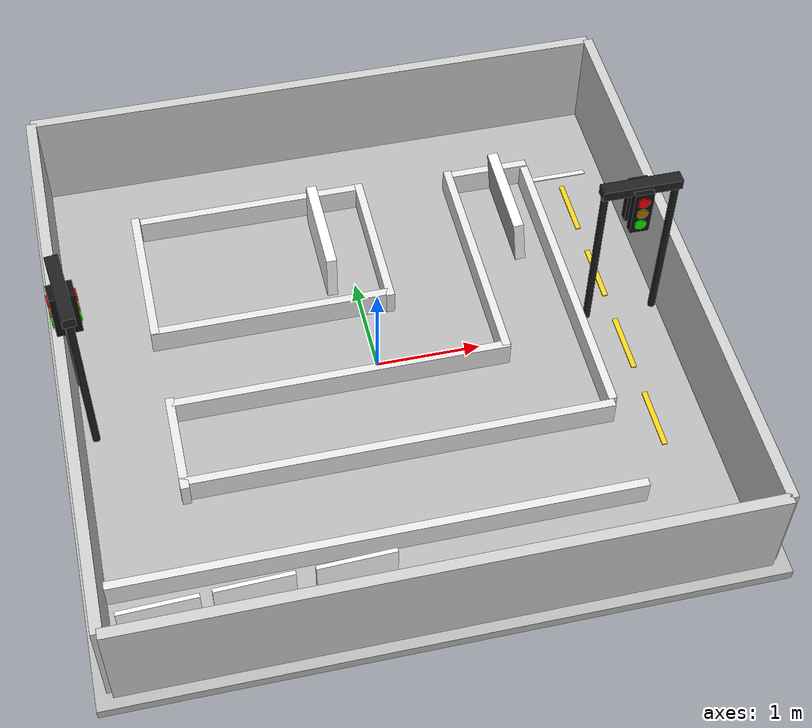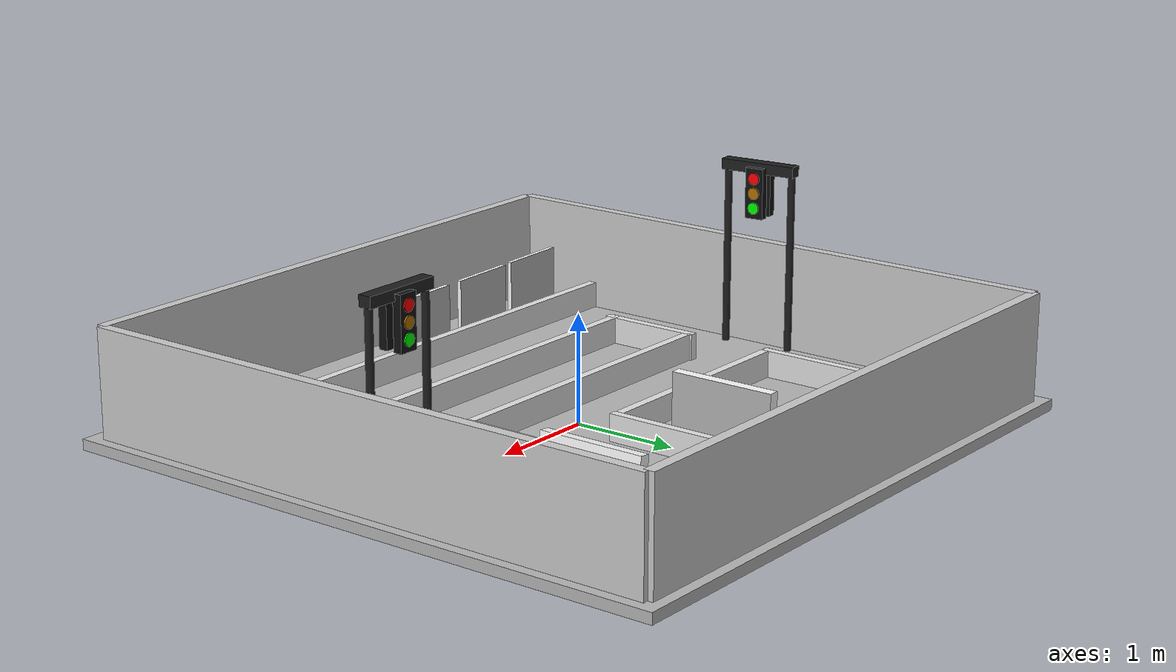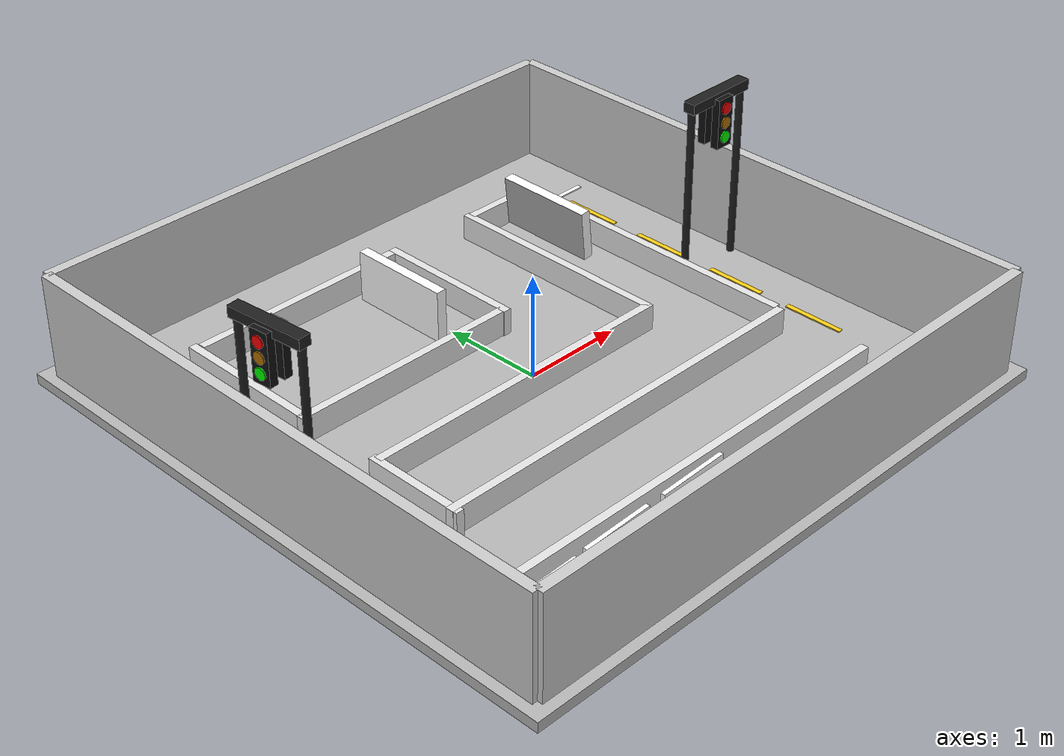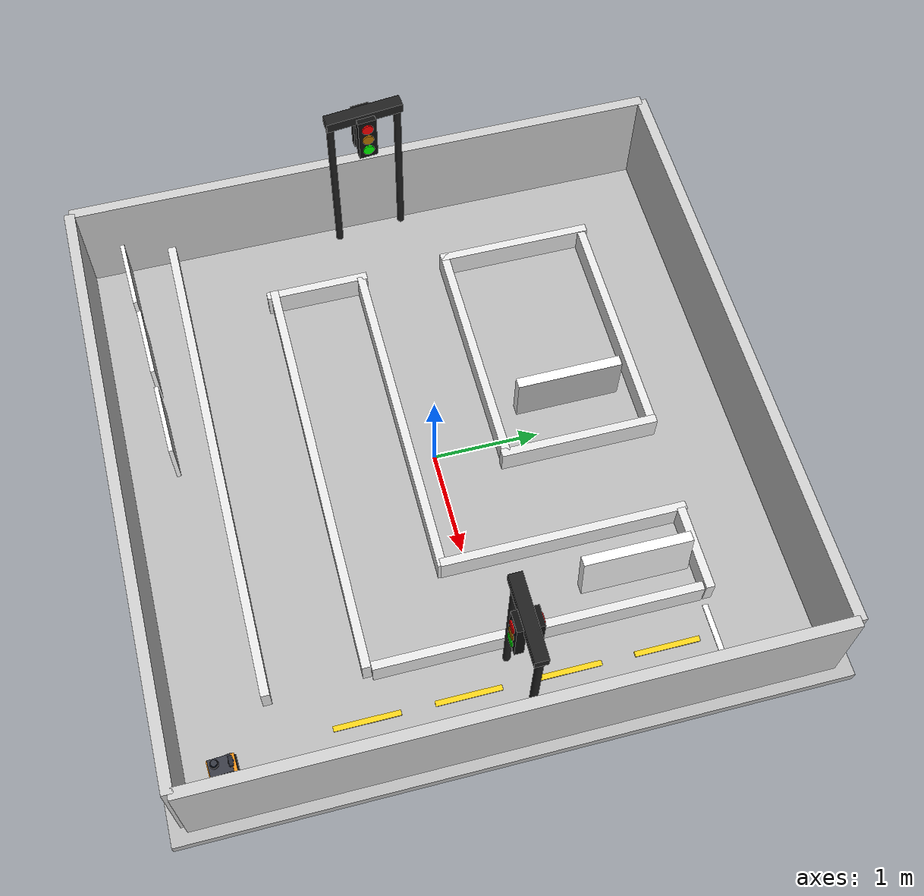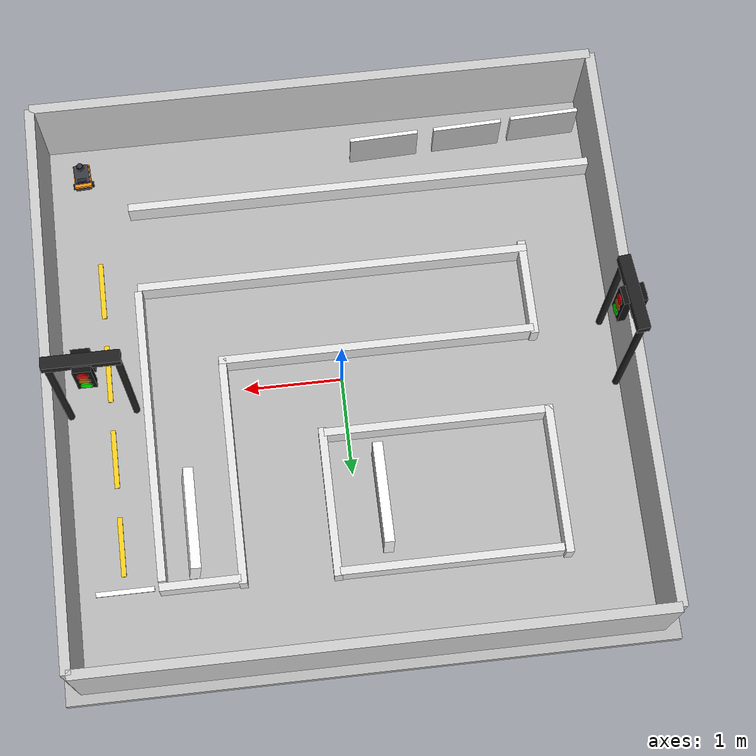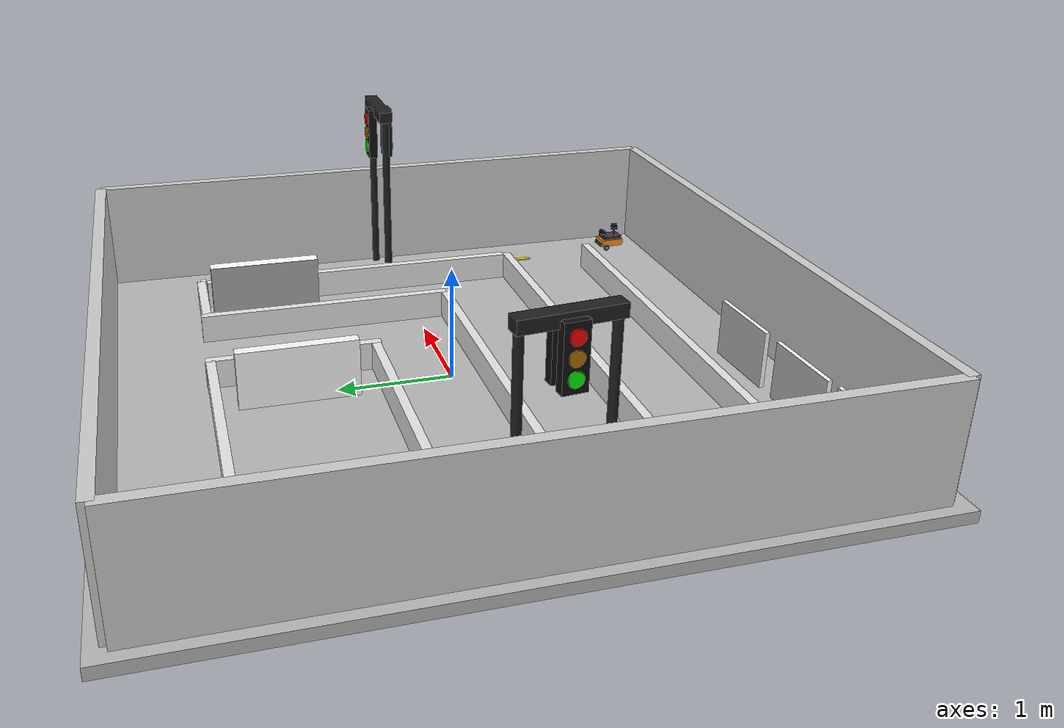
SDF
<sdf version='1.7'>
  <world name='competition_world'>
    <useSimTime>true</useSimTime>
    <physics type='ode'>
      <max_step_size>0.001</max_step_size>
      <real_time_factor>1</real_time_factor>
      <real_time_update_rate>1000</real_time_update_rate>
    </physics>
    <light name='sun' type='directional'>
      <cast_shadows>1</cast_shadows>
      <pose>0 0 10 0 -0 0</pose>
      <diffuse>0.8 0.8 0.8 1</diffuse>
      <specular>0.2 0.2 0.2 1</specular>
      <attenuation><range>1000</range><constant>0.9</constant><linear>0.01</linear><quadratic>0.001</quadratic></attenuation>
      <direction>-0.5 0.1 -0.9</direction>
      <spot><inner_angle>0</inner_angle><outer_angle>0</outer_angle><falloff>0</falloff></spot>
    </light>
    <model name='competition_ground'>
      <static>1</static>
      <link name='link'>
        <pose>0 0 0 0 -0 0</pose>
        <collision name='collision'>
          <geometry><box><size>6 6 0.1</size></box></geometry>
          <max_contacts>10</max_contacts>
          <surface><contact><ode/></contact><bounce/><friction><torsional><ode/></torsional><ode/></friction></surface>
        </collision>
        <visual name='visual'>
          <geometry><box><size>6 6 0.1</size></box></geometry>
          <material>
            <script>
              <uri>model://competition_ground/materials/scripts</uri>
              <uri>model://competition_ground/materials/textures</uri>
              <name>CompetitionGround/Ground</name>
            </script>
            <pbr><metal><albedo_map>model://competition_ground/materials/textures/map.png</albedo_map></metal></pbr>
          </material>
        </visual>
        <self_collide>0</self_collide><enable_wind>0</enable_wind><kinematic>0</kinematic>
      </link>
      <link name='north_wall'>
        <pose>0 2.85 0.55 0 -0 0</pose>
        <collision name='c'><geometry><box><size>5.7 0.1 1</size></box></geometry><max_contacts>10</max_contacts><surface><contact><ode/></contact><bounce/><friction><torsional><ode/></torsional><ode/></friction></surface></collision>
        <visual name='v'><geometry><box><size>5.7 0.1 1</size></box></geometry><material><ambient>0.7 0.7 0.7 1</ambient><diffuse>0.8 0.8 0.8 1</diffuse></material></visual>
        <self_collide>0</self_collide><enable_wind>0</enable_wind><kinematic>0</kinematic>
      </link>
      <link name='south_wall'>
        <pose>0 -2.85 0.55 0 -0 0</pose>
        <collision name='c'><geometry><box><size>5.7 0.1 1</size></box></geometry><max_contacts>10</max_contacts><surface><contact><ode/></contact><bounce/><friction><torsional><ode/></torsional><ode/></friction></surface></collision>
        <visual name='v'><geometry><box><size>5.7 0.1 1</size></box></geometry><material><ambient>0.7 0.7 0.7 1</ambient><diffuse>0.8 0.8 0.8 1</diffuse></material></visual>
        <self_collide>0</self_collide><enable_wind>0</enable_wind><kinematic>0</kinematic>
      </link>
      <link name='west_wall'>
        <pose>-2.85 0 0.55 0 -0 0</pose>
        <collision name='c'><geometry><box><size>0.1 5.7 1</size></box></geometry><max_contacts>10</max_contacts><surface><contact><ode/></contact><bounce/><friction><torsional><ode/></torsional><ode/></friction></surface></collision>
        <visual name='v'><geometry><box><size>0.1 5.7 1</size></box></geometry><material><ambient>0.7 0.7 0.7 1</ambient><diffuse>0.8 0.8 0.8 1</diffuse></material></visual>
        <self_collide>0</self_collide><enable_wind>0</enable_wind><kinematic>0</kinematic>
      </link>
      <link name='east_wall'>
        <pose>2.85 0 0.55 0 -0 0</pose>
        <collision name='c'><geometry><box><size>0.1 5.7 1</size></box></geometry><max_contacts>10</max_contacts><surface><contact><ode/></contact><bounce/><friction><torsional><ode/></torsional><ode/></friction></surface></collision>
        <visual name='v'><geometry><box><size>0.1 5.7 1</size></box></geometry><material><ambient>0.7 0.7 0.7 1</ambient><diffuse>0.8 0.8 0.8 1</diffuse></material></visual>
        <self_collide>0</self_collide><enable_wind>0</enable_wind><kinematic>0</kinematic>
      </link>
    </model>
    <model name='person_area_1'>
      <static>1</static>
      <pose>-0.256507 1.35185 0.1 0 -0 1.57483</pose>
      <link name='link'>
        <visual name='visual'><geometry><mesh><uri>model://ro1/meshes/ro1.dae</uri></mesh></geometry></visual>
        <collision name='collision'><geometry><box><size>0.6 0.3 1.7</size></box></geometry><max_contacts>10</max_contacts><surface><contact><ode/></contact><bounce/><friction><torsional><ode/></torsional><ode/></friction></surface></collision>
        <self_collide>0</self_collide><enable_wind>0</enable_wind><kinematic>0</kinematic>
      </link>
    </model>
    <model name='person_area_2'>
      <static>1</static>
      <pose>1.65659 1.40352 0.1 0.101628 0.000426 -1.57498</pose>
      <link name='link'>
        <visual name='visual'><geometry><mesh><uri>model://ro2/meshes/ro2.dae</uri></mesh></geometry></visual>
        <collision name='collision'><geometry><box><size>0.6 0.3 1.7</size></box></geometry><max_contacts>10</max_contacts><surface><contact><ode/></contact><bounce/><friction><torsional><ode/></torsional><ode/></friction></surface></collision>
        <self_collide>0</self_collide><enable_wind>0</enable_wind><kinematic>0</kinematic>
      </link>
    </model>
    <model name='car_plate_area'>
      <static>1</static>
      <pose>-1.56751 -2.40057 0.1 0 0 -3.10959</pose>
      <link name='link'>
        <visual name='visual'><geometry><mesh><uri>model://cp/meshes/cp.dae</uri></mesh></geometry></visual>
        <collision name='collision'><geometry><box><size>0.4 0.3 0.3</size></box></geometry><max_contacts>10</max_contacts><surface><contact><ode/></contact><bounce/><friction><torsional><ode/></torsional><ode/></friction></surface></collision>
        <self_collide>0</self_collide><enable_wind>0</enable_wind><kinematic>0</kinematic>
      </link>
    </model>
    <model name='car_plate_area_clone'>
      <static>1</static>
      <pose>-0.698781 -2.37381 0.1 0 0 -3.10959</pose>
      <link name='link'><visual name='visual'><geometry><mesh><uri>model://cp/meshes/cp.dae</uri></mesh></geometry></visual><collision name='collision'><geometry><box><size>0.4 0.3 0.3</size></box></geometry></collision></link>
    </model>
    <model name='car_plate_area_clone_0'>
      <static>1</static>
      <pose>-2.37061 -2.43837 0.1 0 0 -3.10959</pose>
      <link name='link'><visual name='visual'><geometry><mesh><uri>model://cp/meshes/cp.dae</uri></mesh></geometry></visual><collision name='collision'><geometry><box><size>0.4 0.3 0.3</size></box></geometry></collision></link>
    </model>
    <model name='my_car'>
      <pose>2.4618 -2.4682 0.05 0 -0 1.621</pose>
      <link name='chassis'>
        <pose>0 0 0 0 -0 0</pose>
        <inertial><mass>1.2</mass><inertia><ixx>0.0034</ixx><ixy>0</ixy><ixz>0</ixz><iyy>0.0063</iyy><iyz>0</iyz><izz>0.0087</izz></inertia><pose>0 0 0 0 -0 0</pose></inertial>
        <collision name='body_collision'><pose>0 0 0.075 0 -0 0</pose><geometry><box><size>0.24 0.17 0.07</size></box></geometry><max_contacts>10</max_contacts><surface><contact><ode/></contact><bounce/><friction><torsional><ode/></torsional><ode/></friction></surface></collision>
        <collision name='caster_front'><pose>0.09 0 0.015 0 -0 0</pose><geometry><sphere><radius>0.015</radius></sphere></geometry><surface><friction><ode><mu>0.01</mu><mu2>0.01</mu2></ode><torsional><ode/></torsional></friction><contact><ode/></contact><bounce/></surface><max_contacts>10</max_contacts></collision>
        <collision name='caster_back'><pose>-0.09 0 0.015 0 -0 0</pose><geometry><sphere><radius>0.015</radius></sphere></geometry><surface><friction><ode><mu>0.01</mu><mu2>0.01</mu2></ode><torsional><ode/></torsional></friction><contact><ode/></contact><bounce/></surface><max_contacts>10</max_contacts></collision>
        <visual name='body_lower'><pose>0 0 0.075 0 -0 0</pose><geometry><box><size>0.24 0.17 0.07</size></box></geometry><material><ambient>0.85 0.45 0.05 1</ambient><diffuse>1 0.58 0.1 1</diffuse><specular>0.5 0.5 0.5 1</specular></material></visual>
        <visual name='body_upper'><pose>-0.01 0 0.125 0 -0 0</pose><geometry><box><size>0.2 0.15 0.035</size></box></geometry><material><ambient>0.12 0.12 0.14 1</ambient><diffuse>0.22 0.23 0.27 1</diffuse><specular>0.6 0.6 0.65 1</specular></material></visual>
        <visual name='bumper'><pose>0.125 0 0.055 0 -0 0</pose><geometry><box><size>0.015 0.16 0.03</size></box></geometry><material><ambient>0.05 0.05 0.05 1</ambient><diffuse>0.1 0.1 0.1 1</diffuse></material></visual>
        <visual name='camera_mount'><pose>0.075 0 0.155 0 -0 0</pose><geometry><box><size>0.03 0.04 0.025</size></box></geometry><material><ambient>0.05 0.05 0.05 1</ambient><diffuse>0.1 0.1 0.1 1</diffuse></material></visual>
        <visual name='camera_body'><pose>0.085 0 0.185 0 -0 0</pose><geometry><box><size>0.035 0.09 0.03</size></box></geometry><material><ambient>0.08 0.08 0.1 1</ambient><diffuse>0.15 0.16 0.2 1</diffuse><specular>0.7 0.7 0.75 1</specular></material></visual>
        <visual name='camera_lens'><pose>0.105 0 0.185 3.14159 1.57079 3.14159</pose><geometry><cylinder><radius>0.011</radius><length>0.008</length></cylinder></geometry><material><ambient>0.02 0.05 0.15 1</ambient><diffuse>0.05 0.15 0.45 1</diffuse><specular>1 1 1 1</specular><emissive>0.02 0.05 0.15 1</emissive></material></visual>
        <visual name='lidar_mast'><pose>-0.05 0 0.175 0 -0 0</pose><geometry><cylinder><radius>0.008</radius><length>0.07</length></cylinder></geometry><material><ambient>0.5 0.08 0.05 1</ambient><diffuse>0.8 0.15 0.1 1</diffuse></material></visual>
        <visual name='lidar_base'><pose>-0.05 0 0.2225 0 -0 0</pose><geometry><cylinder><radius>0.038</radius><length>0.025</length></cylinder></geometry><material><ambient>0.03 0.03 0.035 1</ambient><diffuse>0.08 0.08 0.1 1</diffuse></material></visual>
        <visual name='lidar_head'><pose>-0.05 0 0.2475 0 -0 0</pose><geometry><cylinder><radius>0.028</radius><length>0.028</length></cylinder></geometry><material><ambient>0.1 0.1 0.12 1</ambient><diffuse>0.2 0.21 0.25 1</diffuse></material></visual>
        <visual name='lidar_window'><pose>-0.05 0 0.243 0 -0 0</pose><geometry><cylinder><radius>0.0285</radius><length>0.01</length></cylinder></geometry><material><ambient>0.05 0.08 0.12 1</ambient><diffuse>0.1 0.2 0.35 1</diffuse><specular>1 1 1 1</specular></material></visual>
        <self_collide>0</self_collide><enable_wind>0</enable_wind><kinematic>0</kinematic>
      </link>
      <link name='left_wheel'>
        <pose>0.075 0.095 0.033 0 -0 0</pose>
        <inertial><mass>0.15</mass><inertia><ixx>0.0001</ixx><ixy>0</ixy><ixz>0</ixz><iyy>0.0001</iyy><iyz>0</iyz><izz>0.0001</izz></inertia><pose>0 0 0 0 -0 0</pose></inertial>
        <collision name='collision'><pose>0 0 0 1.5708 -0 0</pose><geometry><cylinder><radius>0.033</radius><length>0.022</length></cylinder></geometry><surface><friction><ode><mu>1.5</mu><mu2>1.5</mu2></ode><torsional><ode/></torsional></friction><contact><ode/></contact><bounce/></surface><max_contacts>10</max_contacts></collision>
        <visual name='visual'><pose>0 0 0 1.5708 -0 0</pose><geometry><cylinder><radius>0.033</radius><length>0.022</length></cylinder></geometry><material><ambient>0.02 0.02 0.02 1</ambient><diffuse>0.05 0.05 0.05 1</diffuse></material></visual>
        <visual name='hub'><pose>0 0.012 0 1.5708 -0 0</pose><geometry><cylinder><radius>0.014</radius><length>0.002</length></cylinder></geometry><material><ambient>0.5 0.5 0.52 1</ambient><diffuse>0.75 0.75 0.78 1</diffuse></material></visual>
        <self_collide>0</self_collide><enable_wind>0</enable_wind><kinematic>0</kinematic>
      </link>
      <joint name='left_wheel_joint' type='revolute'>
        <parent>chassis</parent><child>left_wheel</child><pose>0 0 0 0 -0 0</pose>
        <axis><xyz>0 1 0</xyz><limit><lower>-1e+16</lower><upper>1e+16</upper></limit><dynamics><spring_reference>0</spring_reference><spring_stiffness>0</spring_stiffness></dynamics></axis>
      </joint>
      <link name='right_wheel'>
        <pose>0.075 -0.095 0.033 0 -0 0</pose>
        <inertial><mass>0.15</mass><inertia><ixx>0.0001</ixx><ixy>0</ixy><ixz>0</ixz><iyy>0.0001</iyy><iyz>0</iyz><izz>0.0001</izz></inertia><pose>0 0 0 0 -0 0</pose></inertial>
        <collision name='collision'><pose>0 0 0 1.5708 -0 0</pose><geometry><cylinder><radius>0.033</radius><length>0.022</length></cylinder></geometry><surface><friction><ode><mu>1.5</mu><mu2>1.5</mu2></ode><torsional><ode/></torsional></friction><contact><ode/></contact><bounce/></surface><max_contacts>10</max_contacts></collision>
        <visual name='visual'><pose>0 0 0 1.5708 -0 0</pose><geometry><cylinder><radius>0.033</radius><length>0.022</length></cylinder></geometry><material><ambient>0.02 0.02 0.02 1</ambient><diffuse>0.05 0.05 0.05 1</diffuse></material></visual>
        <visual name='hub'><pose>0 -0.012 0 1.5708 -0 0</pose><geometry><cylinder><radius>0.014</radius><length>0.002</length></cylinder></geometry><material><ambient>0.5 0.5 0.52 1</ambient><diffuse>0.75 0.75 0.78 1</diffuse></material></visual>
        <self_collide>0</self_collide><enable_wind>0</enable_wind><kinematic>0</kinematic>
      </link>
      <joint name='right_wheel_joint' type='revolute'>
        <parent>chassis</parent><child>right_wheel</child><pose>0 0 0 0 -0 0</pose>
        <axis><xyz>0 1 0</xyz><limit><lower>-1e+16</lower><upper>1e+16</upper></limit><dynamics><spring_reference>0</spring_reference><spring_stiffness>0</spring_stiffness></dynamics></axis>
      </joint>
      <plugin name='diff_drive' filename='libgazebo_ros_diff_drive.so'>
        <alwaysOn>1</alwaysOn><updateRate>50</updateRate><legacyMode>0</legacyMode>
        <leftJoint>left_wheel_joint</leftJoint><rightJoint>right_wheel_joint</rightJoint>
        <wheelSeparation>0.19</wheelSeparation><wheelDiameter>0.066</wheelDiameter><torque>10</torque>
        <commandTopic>cmd_vel</commandTopic><odometryTopic>odom</odometryTopic>
        <odometryFrame>odom</odometryFrame><robotBaseFrame>chassis</robotBaseFrame>
        <publishOdometry>1</publishOdometry><publishTf>0</publishTf>
        <publishWheelTF>0</publishWheelTF><publishWheelJointState>1</publishWheelJointState>
      </plugin>
      <link name='camera_link'>
        <pose>0.105 0 0.185 0 -0 0</pose>
        <inertial><mass>0.01</mass><inertia><ixx>1e-06</ixx><ixy>0</ixy><ixz>0</ixz><iyy>1e-06</iyy><iyz>0</iyz><izz>1e-06</izz></inertia><pose>0 0 0 0 -0 0</pose></inertial>
        <sensor name='camera' type='camera'>
          <always_on>1</always_on><update_rate>20</update_rate><visualize>1</visualize>
          <camera><horizontal_fov>1.047</horizontal_fov><image><width>640</width><height>480</height><format>R8G8B8</format></image><clip><near>0.05</near><far>10</far></clip></camera>
          <plugin name='camera_plugin' filename='libgazebo_ros_camera.so'>
            <alwaysOn>1</alwaysOn><cameraName>camera</cameraName><imageTopicName>image_raw</imageTopicName><cameraInfoTopicName>camera_info</cameraInfoTopicName><frameName>camera_link</frameName><hackBaseline>0</hackBaseline>
          </plugin>
        </sensor>
        <self_collide>0</self_collide><enable_wind>0</enable_wind><kinematic>0</kinematic>
      </link>
      <joint name='camera_joint' type='fixed'><parent>chassis</parent><child>camera_link</child></joint>
      <link name='lidar_link'>
        <pose>-0.05 0 0.25 0 -0 0</pose>
        <inertial><mass>0.01</mass><inertia><ixx>1e-06</ixx><ixy>0</ixy><ixz>0</ixz><iyy>1e-06</iyy><iyz>0</iyz><izz>1e-06</izz></inertia><pose>0 0 0 0 -0 0</pose></inertial>
        <sensor name='lidar' type='ray'>
          <always_on>1</always_on><update_rate>10</update_rate><visualize>0</visualize>
          <ray><scan><horizontal><samples>360</samples><resolution>1</resolution><min_angle>-3.14159</min_angle><max_angle>3.14159</max_angle></horizontal><vertical><samples>1</samples><min_angle>0</min_angle><max_angle>0</max_angle></vertical></scan><range><min>0.06</min><max>8</max><resolution>0.01</resolution></range></ray>
          <plugin name='lidar_plugin' filename='libgazebo_ros_laser.so'><topicName>scan</topicName><frameName>lidar_link</frameName></plugin>
        </sensor>
        <self_collide>0</self_collide><enable_wind>0</enable_wind><kinematic>0</kinematic>
      </link>
      <joint name='lidar_joint' type='fixed'><parent>chassis</parent><child>lidar_link</child></joint>
    </model>
    <model name='wall_H580'>
      <static>1</static>
      <pose>-0.4000 -1.9970 0.1500 0 0 0.0000</pose>
      <link name='link'>
        <visual name='v'><geometry><box><size>4.8 0.080 0.300</size></box></geometry>
          <material><ambient>0.85 0.85 0.85 1</ambient><diffuse>0.9 0.9 0.9 1</diffuse></material></visual>
        <collision name='c'><geometry><box><size>4.8 0.080 0.300</size></box></geometry>
          <max_contacts>10</max_contacts>
          <surface><contact><ode/></contact><bounce/><friction><torsional><ode/></torsional><ode/></friction></surface></collision>
        <self_collide>0</self_collide><enable_wind>0</enable_wind><kinematic>0</kinematic>
      </link>
    </model>

    <model name='low_wall_4.0m'>
      <static>1</static>
      <pose>-0.0303 -1.1100 0.1500 0 0 0.0000</pose>
      <link name='link'>
        <visual name='v'><geometry><box><size>4.0 0.080 0.300</size></box></geometry>
          <material><ambient>0.85 0.85 0.85 1</ambient><diffuse>0.9 0.9 0.9 1</diffuse></material></visual>
        <collision name='c'><geometry><box><size>4.0 0.080 0.300</size></box></geometry>
          <max_contacts>10</max_contacts>
          <surface><contact><ode/></contact><bounce/><friction><torsional><ode/></torsional><ode/></friction></surface></collision>
        <self_collide>0</self_collide><enable_wind>0</enable_wind><kinematic>0</kinematic>
      </link>
    </model>

    <model name='low_wall_3.2m'>
      <static>1</static>
      <pose>-0.3813 -0.2445 0.1500 0 0 0.0000</pose>
      <link name='link'>
        <visual name='v'><geometry><box><size>3.2 0.080 0.300</size></box></geometry>
          <material><ambient>0.85 0.85 0.85 1</ambient><diffuse>0.9 0.9 0.9 1</diffuse></material></visual>
        <collision name='c'><geometry><box><size>3.2 0.080 0.300</size></box></geometry>
          <max_contacts>10</max_contacts>
          <surface><contact><ode/></contact><bounce/><friction><torsional><ode/></torsional><ode/></friction></surface></collision>
        <self_collide>0</self_collide><enable_wind>0</enable_wind><kinematic>0</kinematic>
      </link>
    </model>

    <model name='low_wall_2.2m'>
      <static>1</static>
      <pose>-0.8631 2.0229 0.1500 0 0 0.0000</pose>
      <link name='link'>
        <visual name='v'><geometry><box><size>2.2 0.080 0.300</size></box></geometry>
          <material><ambient>0.85 0.85 0.85 1</ambient><diffuse>0.9 0.9 0.9 1</diffuse></material></visual>
        <collision name='c'><geometry><box><size>2.2 0.080 0.300</size></box></geometry>
          <max_contacts>10</max_contacts>
          <surface><contact><ode/></contact><bounce/><friction><torsional><ode/></torsional><ode/></friction></surface></collision>
        <self_collide>0</self_collide><enable_wind>0</enable_wind><kinematic>0</kinematic>
      </link>
    </model>

    <model name='low_wall_1.0m'>
      <static>1</static>
      <pose>-1.9864 -0.6855 0.1500 0 0 1.5708</pose>
      <link name='link'>
        <visual name='v'><geometry><box><size>1.0 0.080 0.300</size></box></geometry>
          <material><ambient>0.85 0.85 0.85 1</ambient><diffuse>0.9 0.9 0.9 1</diffuse></material></visual>
        <collision name='c'><geometry><box><size>1.0 0.080 0.300</size></box></geometry>
          <max_contacts>10</max_contacts>
          <surface><contact><ode/></contact><bounce/><friction><torsional><ode/></torsional><ode/></friction></surface></collision>
        <self_collide>0</self_collide><enable_wind>0</enable_wind><kinematic>0</kinematic>
      </link>
    </model>

    <model name='low_wall_1.5m'>
      <static>1</static>
      <pose>-2.0107 1.3350 0.1500 0 0 1.5708</pose>
      <link name='link'>
        <visual name='v'><geometry><box><size>1.5 0.080 0.300</size></box></geometry>
          <material><ambient>0.85 0.85 0.85 1</ambient><diffuse>0.9 0.9 0.9 1</diffuse></material></visual>
        <collision name='c'><geometry><box><size>1.5 0.080 0.300</size></box></geometry>
          <max_contacts>10</max_contacts>
          <surface><contact><ode/></contact><bounce/><friction><torsional><ode/></torsional><ode/></friction></surface></collision>
        <self_collide>0</self_collide><enable_wind>0</enable_wind><kinematic>0</kinematic>
      </link>
    </model>

    <model name='low_wall_3.0m'>
      <static>1</static>
      <pose>1.9660 0.4324 0.1500 0 0 1.5708</pose>
      <link name='link'>
        <visual name='v'><geometry><box><size>3.0 0.080 0.300</size></box></geometry>
          <material><ambient>0.85 0.85 0.85 1</ambient><diffuse>0.9 0.9 0.9 1</diffuse></material></visual>
        <collision name='c'><geometry><box><size>3.0 0.080 0.300</size></box></geometry>
          <max_contacts>10</max_contacts>
          <surface><contact><ode/></contact><bounce/><friction><torsional><ode/></torsional><ode/></friction></surface></collision>
        <self_collide>0</self_collide><enable_wind>0</enable_wind><kinematic>0</kinematic>
      </link>
    </model>

    <model name='low_wall_1.5m_clone'>
      <static>1</static>
      <pose>0.2598 1.3171 0.1500 0 0 1.5708</pose>
      <link name='link'>
        <visual name='v'><geometry><box><size>1.5 0.080 0.300</size></box></geometry>
          <material><ambient>0.85 0.85 0.85 1</ambient><diffuse>0.9 0.9 0.9 1</diffuse></material></visual>
        <collision name='c'><geometry><box><size>1.5 0.080 0.300</size></box></geometry>
          <max_contacts>10</max_contacts>
          <surface><contact><ode/></contact><bounce/><friction><torsional><ode/></torsional><ode/></friction></surface></collision>
        <self_collide>0</self_collide><enable_wind>0</enable_wind><kinematic>0</kinematic>
      </link>
    </model>

    <model name='low_wall_2.3m'>
      <static>1</static>
      <pose>-0.9031 0.6171 0.1500 0 0 0.0000</pose>
      <link name='link'>
        <visual name='v'><geometry><box><size>2.3 0.080 0.300</size></box></geometry>
          <material><ambient>0.85 0.85 0.85 1</ambient><diffuse>0.9 0.9 0.9 1</diffuse></material></visual>
        <collision name='c'><geometry><box><size>2.3 0.080 0.300</size></box></geometry>
          <max_contacts>10</max_contacts>
          <surface><contact><ode/></contact><bounce/><friction><torsional><ode/></torsional><ode/></friction></surface></collision>
        <self_collide>0</self_collide><enable_wind>0</enable_wind><kinematic>0</kinematic>
      </link>
    </model>

    <model name='low_wall_0.8m'>
      <static>1</static>
      <pose>1.6010 1.9874 0.1500 0 0 0.0000</pose>
      <link name='link'>
        <visual name='v'><geometry><box><size>0.8 0.080 0.300</size></box></geometry>
          <material><ambient>0.85 0.85 0.85 1</ambient><diffuse>0.9 0.9 0.9 1</diffuse></material></visual>
        <collision name='c'><geometry><box><size>0.8 0.080 0.300</size></box></geometry>
          <max_contacts>10</max_contacts>
          <surface><contact><ode/></contact><bounce/><friction><torsional><ode/></torsional><ode/></friction></surface></collision>
        <self_collide>0</self_collide><enable_wind>0</enable_wind><kinematic>0</kinematic>
      </link>
    </model>

    <model name='vertical_wall_2.3m'>
      <static>1</static>
      <pose>1.1837 0.8911 0.1500 0 0 1.5708</pose>
      <link name='link'>
        <visual name='v'><geometry><box><size>2.3 0.080 0.300</size></box></geometry>
          <material><ambient>0.85 0.85 0.85 1</ambient><diffuse>0.9 0.9 0.9 1</diffuse></material></visual>
        <collision name='c'><geometry><box><size>2.3 0.080 0.300</size></box></geometry>
          <max_contacts>10</max_contacts>
          <surface><contact><ode/></contact><bounce/><friction><torsional><ode/></torsional><ode/></friction></surface></collision>
        <self_collide>0</self_collide><enable_wind>0</enable_wind><kinematic>0</kinematic>
      </link>
    </model>

    <!-- Competition visual elements. They are visual-only road furniture, so the
         established wall collision topology used by mapping/navigation is unchanged. -->
    <model name='lane_markings'>
      <static>1</static>
      <link name='link'>
        <visual name='center_line_1'><pose>2.35 1.50 0.056 0 0 1.5708</pose><geometry><box><size>0.60 0.05 0.012</size></box></geometry><material><ambient>0.95 0.78 0.08 1</ambient><diffuse>1 0.82 0.10 1</diffuse></material></visual>
        <visual name='center_line_2'><pose>2.35 0.60 0.056 0 0 1.5708</pose><geometry><box><size>0.60 0.05 0.012</size></box></geometry><material><ambient>0.95 0.78 0.08 1</ambient><diffuse>1 0.82 0.10 1</diffuse></material></visual>
        <visual name='center_line_3'><pose>2.35 -0.30 0.056 0 0 1.5708</pose><geometry><box><size>0.60 0.05 0.012</size></box></geometry><material><ambient>0.95 0.78 0.08 1</ambient><diffuse>1 0.82 0.10 1</diffuse></material></visual>
        <visual name='center_line_4'><pose>2.35 -1.20 0.056 0 0 1.5708</pose><geometry><box><size>0.60 0.05 0.012</size></box></geometry><material><ambient>0.95 0.78 0.08 1</ambient><diffuse>1 0.82 0.10 1</diffuse></material></visual>
        <visual name='stop_line'><pose>2.35 1.95 0.056 0 0 0</pose><geometry><box><size>0.58 0.05 0.012</size></box></geometry><material><ambient>0.95 0.95 0.95 1</ambient><diffuse>1 1 1 1</diffuse></material></visual>
      </link>
    </model>

    <model name='traffic_light_A'>
      <static>1</static>
      <!-- Overhead gantry across the vertical lane. The signal faces both
           travel directions and has no collision geometry. -->
      <pose>0.075584 0.106639 0 0 -0 0</pose>
      <link name='link'>
        <visual name='left_pole'><pose>2.02 0 0.90 0 0 0</pose><geometry><cylinder><radius>0.035</radius><length>1.80</length></cylinder></geometry><material><ambient>0.08 0.08 0.08 1</ambient><diffuse>0.12 0.12 0.12 1</diffuse></material></visual>
        <visual name='right_pole'><pose>2.68 0 0.90 0 0 0</pose><geometry><cylinder><radius>0.035</radius><length>1.80</length></cylinder></geometry><material><ambient>0.08 0.08 0.08 1</ambient><diffuse>0.12 0.12 0.12 1</diffuse></material></visual>
        <visual name='overhead_beam'><pose>2.35 0 1.78 0 0 0</pose><geometry><box><size>0.74 0.12 0.10</size></box></geometry><material><ambient>0.08 0.08 0.08 1</ambient><diffuse>0.12 0.12 0.12 1</diffuse></material></visual>
        <visual name='housing_front'><pose>2.35 -0.075 1.55 0 0 0</pose><geometry><box><size>0.18 0.08 0.48</size></box></geometry><material><ambient>0.03 0.03 0.03 1</ambient><diffuse>0.06 0.06 0.06 1</diffuse></material></visual>
        <visual name='red_light_front'><pose>2.35 -0.123 1.69 1.5708 0 0</pose><geometry><cylinder><radius>0.055</radius><length>0.012</length></cylinder></geometry><material><ambient>0.8 0 0 1</ambient><diffuse>1 0 0 1</diffuse><emissive>0.7 0 0 1</emissive></material></visual>
        <visual name='yellow_light_front'><pose>2.35 -0.123 1.55 1.5708 0 0</pose><geometry><cylinder><radius>0.055</radius><length>0.012</length></cylinder></geometry><material><ambient>0.5 0.3 0 1</ambient><diffuse>0.7 0.45 0 1</diffuse></material></visual>
        <visual name='green_light_front'><pose>2.35 -0.123 1.41 1.5708 0 0</pose><geometry><cylinder><radius>0.055</radius><length>0.012</length></cylinder></geometry><material><ambient>0 0.7 0 1</ambient><diffuse>0 1 0 1</diffuse><emissive>0 0.55 0 1</emissive></material></visual>
        <visual name='housing_back'><pose>2.35 0.075 1.55 0 0 0</pose><geometry><box><size>0.18 0.08 0.48</size></box></geometry><material><ambient>0.03 0.03 0.03 1</ambient><diffuse>0.06 0.06 0.06 1</diffuse></material></visual>
        <visual name='red_light_back'><pose>2.35 0.123 1.69 1.5708 0 0</pose><geometry><cylinder><radius>0.055</radius><length>0.012</length></cylinder></geometry><material><ambient>0.8 0 0 1</ambient><diffuse>1 0 0 1</diffuse><emissive>0.7 0 0 1</emissive></material></visual>
        <visual name='yellow_light_back'><pose>2.35 0.123 1.55 1.5708 0 0</pose><geometry><cylinder><radius>0.055</radius><length>0.012</length></cylinder></geometry><material><ambient>0.5 0.3 0 1</ambient><diffuse>0.7 0.45 0 1</diffuse></material></visual>
        <visual name='green_light_back'><pose>2.35 0.123 1.41 1.5708 0 0</pose><geometry><cylinder><radius>0.055</radius><length>0.012</length></cylinder></geometry><material><ambient>0 0.7 0 1</ambient><diffuse>0 1 0 1</diffuse><emissive>0 0.55 0 1</emissive></material></visual>
      </link>
    </model>

    <model name='traffic_light_A_clone'>
      <static>1</static>
      <!-- Second overhead signal position saved from the edited Gazebo scene. -->
      <pose>-2.96766 2.35474 0 0 0 -1.46939</pose>
      <link name='link'>
        <visual name='left_pole'><pose>2.02 0 0.90 0 0 0</pose><geometry><cylinder><radius>0.035</radius><length>1.80</length></cylinder></geometry><material><ambient>0.08 0.08 0.08 1</ambient><diffuse>0.12 0.12 0.12 1</diffuse></material></visual>
        <visual name='right_pole'><pose>2.68 0 0.90 0 0 0</pose><geometry><cylinder><radius>0.035</radius><length>1.80</length></cylinder></geometry><material><ambient>0.08 0.08 0.08 1</ambient><diffuse>0.12 0.12 0.12 1</diffuse></material></visual>
        <visual name='overhead_beam'><pose>2.35 0 1.78 0 0 0</pose><geometry><box><size>0.74 0.12 0.10</size></box></geometry><material><ambient>0.08 0.08 0.08 1</ambient><diffuse>0.12 0.12 0.12 1</diffuse></material></visual>
        <visual name='housing_front'><pose>2.35 -0.075 1.55 0 0 0</pose><geometry><box><size>0.18 0.08 0.48</size></box></geometry><material><ambient>0.03 0.03 0.03 1</ambient><diffuse>0.06 0.06 0.06 1</diffuse></material></visual>
        <visual name='red_light_front'><pose>2.35 -0.123 1.69 1.5708 0 0</pose><geometry><cylinder><radius>0.055</radius><length>0.012</length></cylinder></geometry><material><ambient>0.8 0 0 1</ambient><diffuse>1 0 0 1</diffuse><emissive>0.7 0 0 1</emissive></material></visual>
        <visual name='yellow_light_front'><pose>2.35 -0.123 1.55 1.5708 0 0</pose><geometry><cylinder><radius>0.055</radius><length>0.012</length></cylinder></geometry><material><ambient>0.5 0.3 0 1</ambient><diffuse>0.7 0.45 0 1</diffuse></material></visual>
        <visual name='green_light_front'><pose>2.35 -0.123 1.41 1.5708 0 0</pose><geometry><cylinder><radius>0.055</radius><length>0.012</length></cylinder></geometry><material><ambient>0 0.7 0 1</ambient><diffuse>0 1 0 1</diffuse><emissive>0 0.55 0 1</emissive></material></visual>
        <visual name='housing_back'><pose>2.35 0.075 1.55 0 0 0</pose><geometry><box><size>0.18 0.08 0.48</size></box></geometry><material><ambient>0.03 0.03 0.03 1</ambient><diffuse>0.06 0.06 0.06 1</diffuse></material></visual>
        <visual name='red_light_back'><pose>2.35 0.123 1.69 1.5708 0 0</pose><geometry><cylinder><radius>0.055</radius><length>0.012</length></cylinder></geometry><material><ambient>0.8 0 0 1</ambient><diffuse>1 0 0 1</diffuse><emissive>0.7 0 0 1</emissive></material></visual>
        <visual name='yellow_light_back'><pose>2.35 0.123 1.55 1.5708 0 0</pose><geometry><cylinder><radius>0.055</radius><length>0.012</length></cylinder></geometry><material><ambient>0.5 0.3 0 1</ambient><diffuse>0.7 0.45 0 1</diffuse></material></visual>
        <visual name='green_light_back'><pose>2.35 0.123 1.41 1.5708 0 0</pose><geometry><cylinder><radius>0.055</radius><length>0.012</length></cylinder></geometry><material><ambient>0 0.7 0 1</ambient><diffuse>0 1 0 1</diffuse><emissive>0 0.55 0 1</emissive></material></visual>
      </link>
    </model>

    <gravity>0 0 -9.8</gravity>
    <magnetic_field>6e-06 2.3e-05 -4.2e-05</magnetic_field>
    <atmosphere type='adiabatic'/>
    <scene><ambient>0.4 0.4 0.4 1</ambient><background>0.7 0.7 0.7 1</background><shadows>1</shadows></scene>
    <wind/>
    <spherical_coordinates>
      <surface_model>EARTH_WGS84</surface_model>
      <latitude_deg>0</latitude_deg><longitude_deg>0</longitude_deg><elevation>0</elevation><heading_deg>0</heading_deg>
    </spherical_coordinates>
    <gui fullscreen='0'>
      <camera name='user_camera'>
        <pose>5.92765 -2.38457 9.83622 0 0.887643 2.36419</pose>
        <view_controller>orbit</view_controller>
        <projection_type>perspective</projection_type>
      </camera>
    </gui>
  </world>
</sdf>
